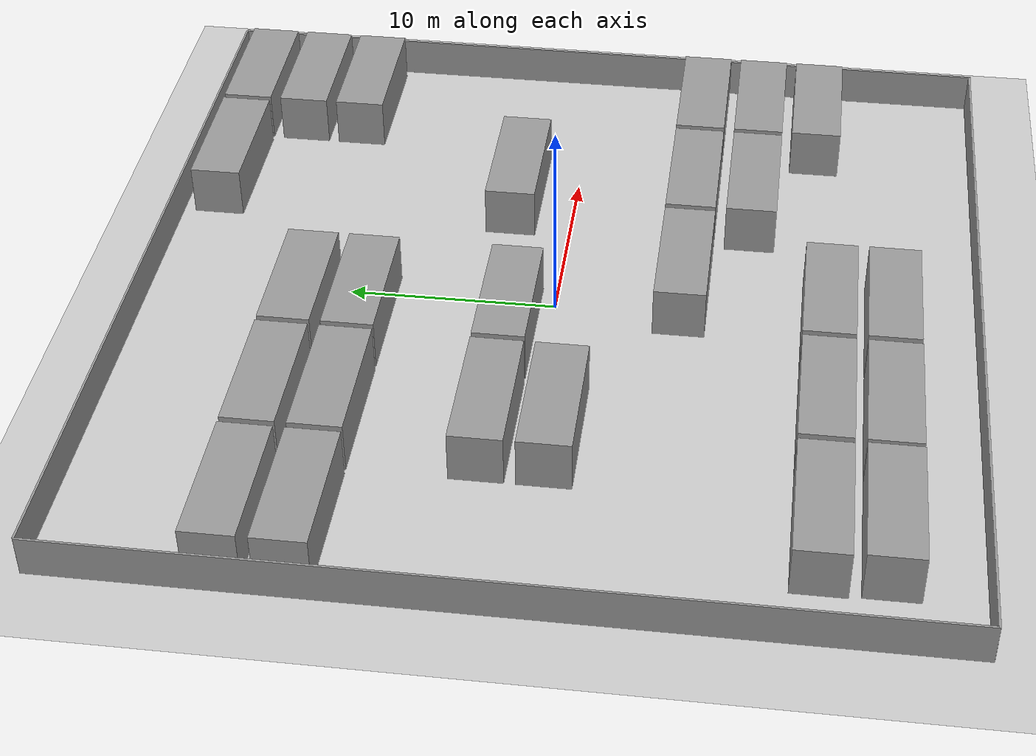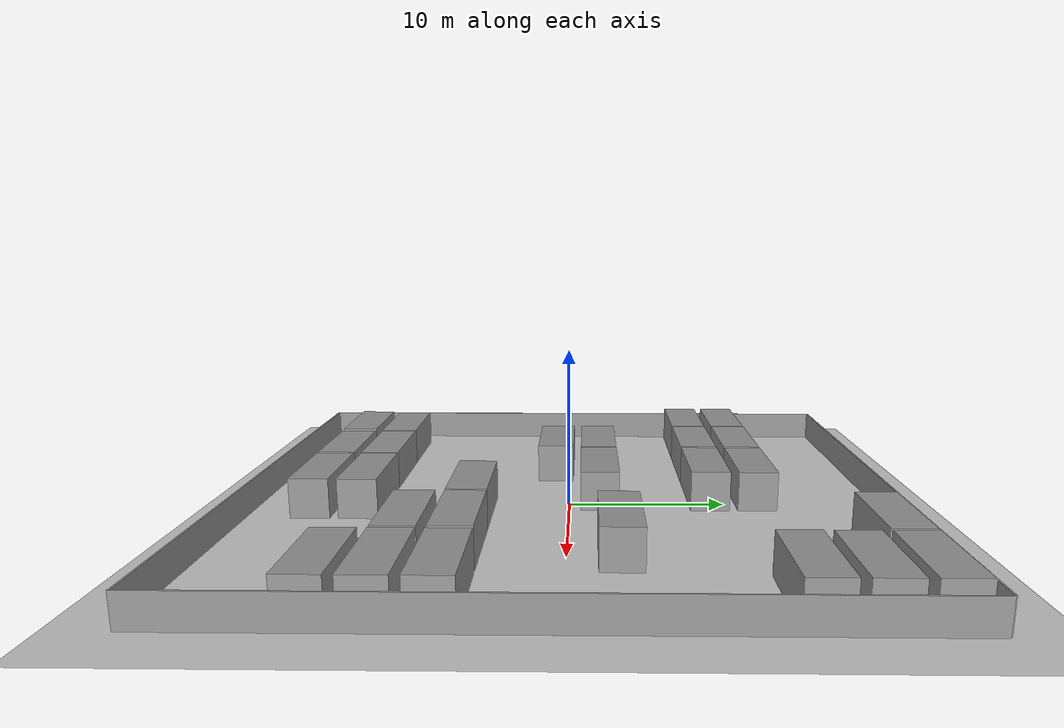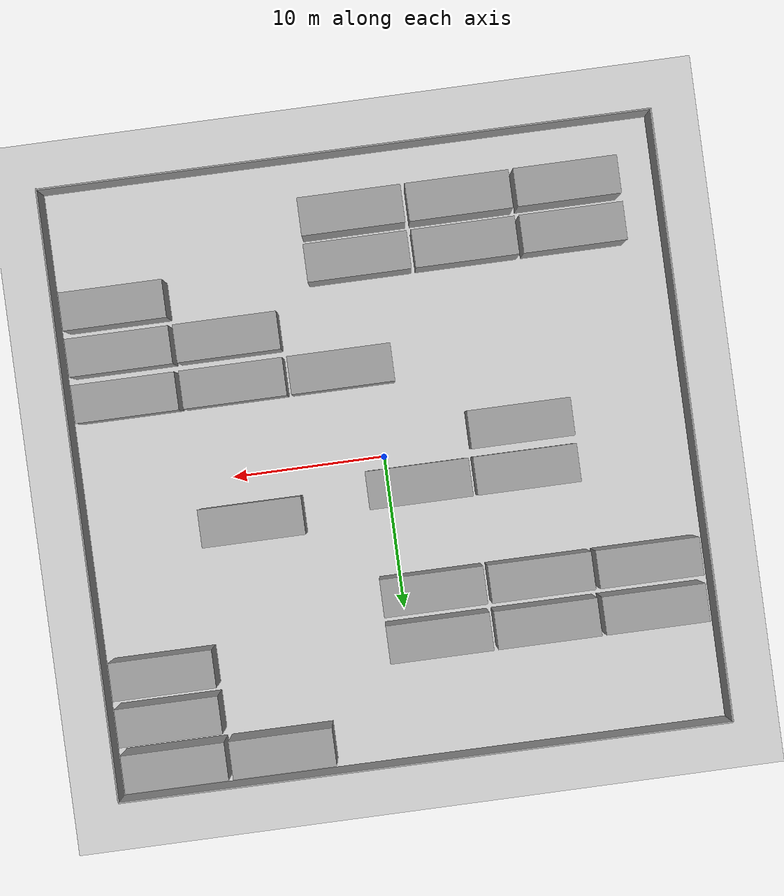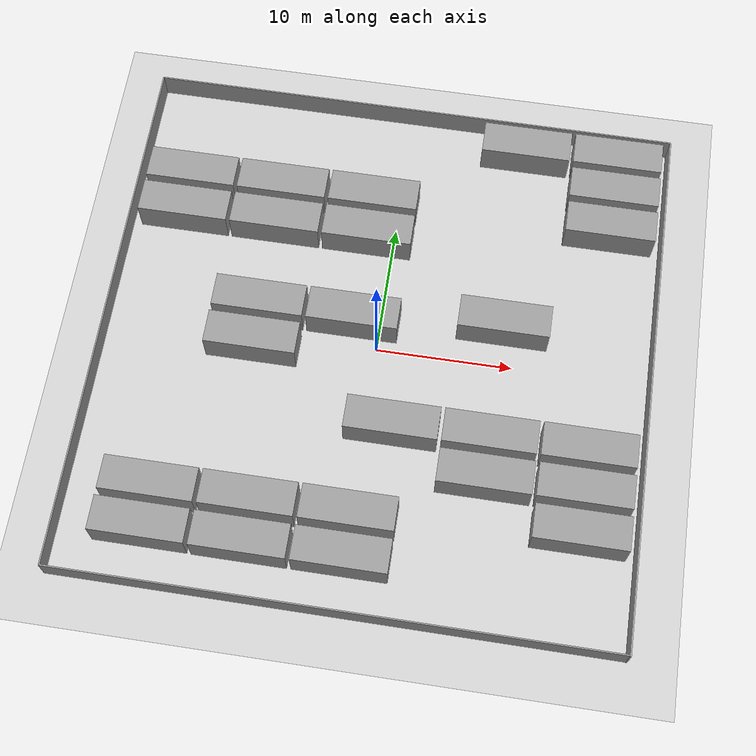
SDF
<sdf version="1.4">
 <world name="default">
  <light name="sun" type="directional">
   <cast_shadows>0</cast_shadows>
   <pose>0 0 10 0 -0 0</pose>
   <diffuse>0.8 0.8 0.8 1</diffuse>
   <specular>0.2 0.2 0.2 1</specular>
   <attenuation>
    <range>1000</range>
    <constant>0.9</constant>
    <linear>0.01</linear>
    <quadratic>0.001</quadratic>
   </attenuation>
   <direction>-0.5 0.1 -0.9</direction>
  </light>
  <model name="ground_plane">
   <static>1</static>
   <link name="link">
    <collision name="collision">
     <geometry><plane><normal>0 0 1</normal><size>100 100</size></plane></geometry>
     <surface><friction><ode><mu>100</mu><mu2>50</mu2></ode></friction></surface>
    </collision>
    <visual name="visual">
     <cast_shadows>0</cast_shadows>
     <geometry><plane><normal>0 0 1</normal><size>40 40</size></plane></geometry>
     <material>
      <script><uri>file://media/materials/scripts/gazebo.material</uri><name>Gazebo/Grey</name></script>
     </material>
    </visual>
    <velocity_decay><linear>0</linear><angular>0</angular></velocity_decay>
   </link>
  </model>
  <physics type="ode">
   <max_step_size>0.001</max_step_size>
   <real_time_factor>1</real_time_factor>
   <real_time_update_rate>1000</real_time_update_rate>
   <gravity>0 0 -9.8</gravity>
  </physics>
  <scene><ambient>0.4 0.4 0.4 1</ambient><background>0.7 0.7 0.7 1</background><shadows>0</shadows></scene>
  <spherical_coordinates>
   <surface_model>EARTH_WGS84</surface_model>
   <latitude_deg>0</latitude_deg>
   <longitude_deg>0</longitude_deg>
   <elevation>0</elevation>
   <heading_deg>0</heading_deg>
  </spherical_coordinates>
  <model name="wall_1">
   <pose>19.9725 -0.189071 0.990987 0 -0 0</pose>
   <link name="link">
    <inertial>
     <mass>1</mass>
     <inertia><ixx>1</ixx><ixy>0</ixy><ixz>0</ixz><iyy>1</iyy><iyz>0</iyz><izz>1</izz></inertia>
    </inertial>
    <collision name="collision"><geometry><box><size>0.1 40 2</size></box></geometry></collision>
    <visual name="visual">
     <geometry><box><size>0.1 40 2</size></box></geometry>
     <material>
      <script><uri>file://media/materials/scripts/gazebo.material</uri><name>Gazebo/Grey</name></script>
     </material>
    </visual>
    <velocity_decay><linear>0</linear><angular>0</angular></velocity_decay>
   </link>
   <static>1</static>
  </model>
  <model name="wall_3">
   <pose>-20.0486 -0.037272 0.990987 0 -0 0</pose>
   <link name="link">
    <inertial>
     <mass>1</mass>
     <inertia><ixx>1</ixx><ixy>0</ixy><ixz>0</ixz><iyy>1</iyy><iyz>0</iyz><izz>1</izz></inertia>
    </inertial>
    <collision name="collision"><geometry><box><size>0.1 40 2</size></box></geometry></collision>
    <visual name="visual">
     <geometry><box><size>0.1 40 2</size></box></geometry>
     <material>
      <script><uri>file://media/materials/scripts/gazebo.material</uri><name>Gazebo/Grey</name></script>
     </material>
    </visual>
    <velocity_decay><linear>0</linear><angular>0</angular></velocity_decay>
   </link>
   <static>1</static>
  </model>
  <model name="wall_2">
   <pose>-0.076077 -20.0521 0.998964 0 0 -1.57334</pose>
   <link name="link">
    <inertial>
     <mass>1</mass>
     <inertia><ixx>1</ixx><ixy>0</ixy><ixz>0</ixz><iyy>1</iyy><iyz>0</iyz><izz>1</izz></inertia>
    </inertial>
    <collision name="collision"><geometry><box><size>0.1 40 2</size></box></geometry></collision>
    <visual name="visual">
     <geometry><box><size>0.1 40 2</size></box></geometry>
     <material>
      <script><uri>file://media/materials/scripts/gazebo.material</uri><name>Gazebo/Grey</name></script>
     </material>
    </visual>
    <velocity_decay><linear>0</linear><angular>0</angular></velocity_decay>
   </link>
   <static>1</static>
  </model>
  <model name="wall_4">
   <pose>-0.035928 19.895 0.998964 0 0 -1.57334</pose>
   <link name="link">
    <inertial>
     <mass>1</mass>
     <inertia><ixx>1</ixx><ixy>0</ixy><ixz>0</ixz><iyy>1</iyy><iyz>0</iyz><izz>1</izz></inertia>
    </inertial>
    <collision name="collision"><geometry><box><size>0.1 40 2</size></box></geometry></collision>
    <visual name="visual">
     <geometry><box><size>0.1 40 2</size></box></geometry>
     <material>
      <script><uri>file://media/materials/scripts/gazebo.material</uri><name>Gazebo/Grey</name></script>
     </material>
    </visual>
    <velocity_decay><linear>0</linear><angular>0</angular></velocity_decay>
   </link>
   <static>1</static>
  </model>
  <model name="container_2">
   <pose>-2 12 1.26801 0 -0 1.57</pose>
   <link name="link">
    <inertial>
     <mass>1</mass>
     <inertia><ixx>1</ixx><ixy>0</ixy><ixz>0</ixz><iyy>1</iyy><iyz>0</iyz><izz>1</izz></inertia>
    </inertial>
    <collision name="collision"><geometry><box><size>2.47651 6.71503 2.53601</size></box></geometry></collision>
    <visual name="visual">
     <geometry><box><size>2.47651 6.71503 2.53601</size></box></geometry>
     <material>
      <script><uri>file://media/materials/scripts/gazebo.material</uri><name>Gazebo/Grey</name></script>
     </material>
    </visual>
    <velocity_decay><linear>0</linear><angular>0</angular></velocity_decay>
    <gravity>0</gravity>
   </link>
   <static>1</static>
  </model>
  <model name="container_3">
   <pose>-14 -16 1.35468 0 0 -1.57154</pose>
   <link name="link">
    <inertial>
     <mass>1</mass>
     <inertia><ixx>1</ixx><ixy>0</ixy><ixz>0</ixz><iyy>1</iyy><iyz>0</iyz><izz>1</izz></inertia>
    </inertial>
    <collision name="collision"><geometry><box><size>2.47651 6.71503 2.53601</size></box></geometry></collision>
    <visual name="visual">
     <geometry><box><size>2.47651 6.71503 2.53601</size></box></geometry>
     <material>
      <script><uri>file://media/materials/scripts/gazebo.material</uri><name>Gazebo/Grey</name></script>
     </material>
    </visual>
    <velocity_decay><linear>0</linear><angular>0</angular></velocity_decay>
    <gravity>0</gravity>
   </link>
   <static>1</static>
  </model>
  <model name="container_4">
   <pose>-9 12 1.26801 0 -0 1.57</pose>
   <link name="link">
    <inertial>
     <mass>1</mass>
     <inertia><ixx>1</ixx><ixy>0</ixy><ixz>0</ixz><iyy>1</iyy><iyz>0</iyz><izz>1</izz></inertia>
    </inertial>
    <collision name="collision"><geometry><box><size>2.47651 6.71503 2.53601</size></box></geometry></collision>
    <visual name="visual">
     <geometry><box><size>2.47651 6.71503 2.53601</size></box></geometry>
     <material>
      <script><uri>file://media/materials/scripts/gazebo.material</uri><name>Gazebo/Grey</name></script>
     </material>
    </visual>
    <velocity_decay><linear>0</linear><angular>0</angular></velocity_decay>
    <gravity>0</gravity>
   </link>
   <static>1</static>
  </model>
  <model name="container_6">
   <pose>-9 9 1.26801 0 -0 1.57</pose>
   <link name="link">
    <inertial>
     <mass>1</mass>
     <inertia><ixx>1</ixx><ixy>0</ixy><ixz>0</ixz><iyy>1</iyy><iyz>0</iyz><izz>1</izz></inertia>
    </inertial>
    <collision name="collision"><geometry><box><size>2.47651 6.71503 2.53601</size></box></geometry></collision>
    <visual name="visual">
     <geometry><box><size>2.47651 6.71503 2.53601</size></box></geometry>
     <material>
      <script><uri>file://media/materials/scripts/gazebo.material</uri><name>Gazebo/Grey</name></script>
     </material>
    </visual>
    <velocity_decay><linear>0</linear><angular>0</angular></velocity_decay>
    <gravity>0</gravity>
   </link>
   <static>1</static>
  </model>
  <model name="container_8">
   <pose>-2 9 1.26801 0 -0 1.57</pose>
   <link name="link">
    <inertial>
     <mass>1</mass>
     <inertia><ixx>1</ixx><ixy>0</ixy><ixz>0</ixz><iyy>1</iyy><iyz>0</iyz><izz>1</izz></inertia>
    </inertial>
    <collision name="collision"><geometry><box><size>2.47651 6.71503 2.53601</size></box></geometry></collision>
    <visual name="visual">
     <geometry><box><size>2.47651 6.71503 2.53601</size></box></geometry>
     <material>
      <script><uri>file://media/materials/scripts/gazebo.material</uri><name>Gazebo/Grey</name></script>
     </material>
    </visual>
    <velocity_decay><linear>0</linear><angular>0</angular></velocity_decay>
    <gravity>0</gravity>
   </link>
   <static>1</static>
  </model>
  <model name="container_25">
   <pose>-16 9 1.26801 0 -0 1.57</pose>
   <link name="link">
    <inertial>
     <mass>1</mass>
     <inertia><ixx>1</ixx><ixy>0</ixy><ixz>0</ixz><iyy>1</iyy><iyz>0</iyz><izz>1</izz></inertia>
    </inertial>
    <collision name="collision"><geometry><box><size>2.47651 6.71503 2.53601</size></box></geometry></collision>
    <visual name="visual">
     <geometry><box><size>2.47651 6.71503 2.53601</size></box></geometry>
     <material>
      <script><uri>file://media/materials/scripts/gazebo.material</uri><name>Gazebo/Grey</name></script>
     </material>
    </visual>
    <velocity_decay><linear>0</linear><angular>0</angular></velocity_decay>
    <gravity>0</gravity>
   </link>
   <static>1</static>
  </model>
  <model name="container_34">
   <pose>16 -9 1.26801 0 -0 1.57</pose>
   <link name="link">
    <inertial>
     <mass>1</mass>
     <inertia><ixx>1</ixx><ixy>0</ixy><ixz>0</ixz><iyy>1</iyy><iyz>0</iyz><izz>1</izz></inertia>
    </inertial>
    <collision name="collision"><geometry><box><size>2.47651 6.71503 2.53601</size></box></geometry></collision>
    <visual name="visual">
     <geometry><box><size>2.47651 6.71503 2.53601</size></box></geometry>
     <material>
      <script><uri>file://media/materials/scripts/gazebo.material</uri><name>Gazebo/Grey</name></script>
     </material>
    </visual>
    <velocity_decay><linear>0</linear><angular>0</angular></velocity_decay>
    <gravity>0</gravity>
   </link>
   <static>1</static>
  </model>
  <model name="container_32">
   <pose>16 -6 1.26801 0 -0 1.57</pose>
   <link name="link">
    <inertial>
     <mass>1</mass>
     <inertia><ixx>1</ixx><ixy>0</ixy><ixz>0</ixz><iyy>1</iyy><iyz>0</iyz><izz>1</izz></inertia>
    </inertial>
    <collision name="collision"><geometry><box><size>2.47651 6.71503 2.53601</size></box></geometry></collision>
    <visual name="visual">
     <geometry><box><size>2.47651 6.71503 2.53601</size></box></geometry>
     <material>
      <script><uri>file://media/materials/scripts/gazebo.material</uri><name>Gazebo/Grey</name></script>
     </material>
    </visual>
    <velocity_decay><linear>0</linear><angular>0</angular></velocity_decay>
    <gravity>0</gravity>
   </link>
   <static>1</static>
  </model>
  <model name="container_30">
   <pose>16 12 1.26801 0 -0 1.57</pose>
   <link name="link">
    <inertial>
     <mass>1</mass>
     <inertia><ixx>1</ixx><ixy>0</ixy><ixz>0</ixz><iyy>1</iyy><iyz>0</iyz><izz>1</izz></inertia>
    </inertial>
    <collision name="collision"><geometry><box><size>2.47651 6.71503 2.53601</size></box></geometry></collision>
    <visual name="visual">
     <geometry><box><size>2.47651 6.71503 2.53601</size></box></geometry>
     <material>
      <script><uri>file://media/materials/scripts/gazebo.material</uri><name>Gazebo/Grey</name></script>
     </material>
    </visual>
    <velocity_decay><linear>0</linear><angular>0</angular></velocity_decay>
    <gravity>0</gravity>
   </link>
   <static>1</static>
  </model>
  <model name="container_23">
   <pose>-16 12 1.26801 0 -0 1.57</pose>
   <link name="link">
    <inertial>
     <mass>1</mass>
     <inertia><ixx>1</ixx><ixy>0</ixy><ixz>0</ixz><iyy>1</iyy><iyz>0</iyz><izz>1</izz></inertia>
    </inertial>
    <collision name="collision"><geometry><box><size>2.47651 6.71503 2.53601</size></box></geometry></collision>
    <visual name="visual">
     <geometry><box><size>2.47651 6.71503 2.53601</size></box></geometry>
     <material>
      <script><uri>file://media/materials/scripts/gazebo.material</uri><name>Gazebo/Grey</name></script>
     </material>
    </visual>
    <velocity_decay><linear>0</linear><angular>0</angular></velocity_decay>
    <gravity>0</gravity>
   </link>
   <static>1</static>
  </model>
  <model name="container_21">
   <pose>-7 -16 1.26801 0 -0 1.57</pose>
   <link name="link">
    <inertial>
     <mass>1</mass>
     <inertia><ixx>1</ixx><ixy>0</ixy><ixz>0</ixz><iyy>1</iyy><iyz>0</iyz><izz>1</izz></inertia>
    </inertial>
    <collision name="collision"><geometry><box><size>2.47651 6.71503 2.53601</size></box></geometry></collision>
    <visual name="visual">
     <geometry><box><size>2.47651 6.71503 2.53601</size></box></geometry>
     <material>
      <script><uri>file://media/materials/scripts/gazebo.material</uri><name>Gazebo/Grey</name></script>
     </material>
    </visual>
    <velocity_decay><linear>0</linear><angular>0</angular></velocity_decay>
    <gravity>0</gravity>
   </link>
   <static>1</static>
  </model>
  <model name="container_10">
   <pose>2 -6 1.26801 0 -0 1.57</pose>
   <link name="link">
    <inertial>
     <mass>1</mass>
     <inertia><ixx>1</ixx><ixy>0</ixy><ixz>0</ixz><iyy>1</iyy><iyz>0</iyz><izz>1</izz></inertia>
    </inertial>
    <collision name="collision"><geometry><box><size>2.47651 6.71503 2.53601</size></box></geometry></collision>
    <visual name="visual">
     <geometry><box><size>2.47651 6.71503 2.53601</size></box></geometry>
     <material>
      <script><uri>file://media/materials/scripts/gazebo.material</uri><name>Gazebo/Grey</name></script>
     </material>
    </visual>
    <velocity_decay><linear>0</linear><angular>0</angular></velocity_decay>
    <gravity>0</gravity>
   </link>
   <static>1</static>
  </model>
  <model name="container_12">
   <pose>-7 -13 1.26801 0 -0 1.57</pose>
   <link name="link">
    <inertial>
     <mass>1</mass>
     <inertia><ixx>1</ixx><ixy>0</ixy><ixz>0</ixz><iyy>1</iyy><iyz>0</iyz><izz>1</izz></inertia>
    </inertial>
    <collision name="collision"><geometry><box><size>2.47651 6.71503 2.53601</size></box></geometry></collision>
    <visual name="visual">
     <geometry><box><size>2.47651 6.71503 2.53601</size></box></geometry>
     <material>
      <script><uri>file://media/materials/scripts/gazebo.material</uri><name>Gazebo/Grey</name></script>
     </material>
    </visual>
    <velocity_decay><linear>0</linear><angular>0</angular></velocity_decay>
    <gravity>0</gravity>
   </link>
   <static>1</static>
  </model>
  <model name="container_14">
   <pose>-14 -13 1.26801 0 -0 1.57</pose>
   <link name="link">
    <inertial>
     <mass>1</mass>
     <inertia><ixx>1</ixx><ixy>0</ixy><ixz>0</ixz><iyy>1</iyy><iyz>0</iyz><izz>1</izz></inertia>
    </inertial>
    <collision name="collision"><geometry><box><size>2.47651 6.71503 2.53601</size></box></geometry></collision>
    <visual name="visual">
     <geometry><box><size>2.47651 6.71503 2.53601</size></box></geometry>
     <material>
      <script><uri>file://media/materials/scripts/gazebo.material</uri><name>Gazebo/Grey</name></script>
     </material>
    </visual>
    <velocity_decay><linear>0</linear><angular>0</angular></velocity_decay>
    <gravity>0</gravity>
   </link>
   <static>1</static>
  </model>
  <model name="container_16">
   <pose>9 -6 1.26801 0 -0 1.57</pose>
   <link name="link">
    <inertial>
     <mass>1</mass>
     <inertia><ixx>1</ixx><ixy>0</ixy><ixz>0</ixz><iyy>1</iyy><iyz>0</iyz><izz>1</izz></inertia>
    </inertial>
    <collision name="collision"><geometry><box><size>2.47651 6.71503 2.53601</size></box></geometry></collision>
    <visual name="visual">
     <geometry><box><size>2.47651 6.71503 2.53601</size></box></geometry>
     <material>
      <script><uri>file://media/materials/scripts/gazebo.material</uri><name>Gazebo/Grey</name></script>
     </material>
    </visual>
    <velocity_decay><linear>0</linear><angular>0</angular></velocity_decay>
    <gravity>0</gravity>
   </link>
   <static>1</static>
  </model>
  <model name="container_18">
   <pose>0 -13 1.26801 0 -0 1.57</pose>
   <link name="link">
    <inertial>
     <mass>1</mass>
     <inertia><ixx>1</ixx><ixy>0</ixy><ixz>0</ixz><iyy>1</iyy><iyz>0</iyz><izz>1</izz></inertia>
    </inertial>
    <collision name="collision"><geometry><box><size>2.47651 6.71503 2.53601</size></box></geometry></collision>
    <visual name="visual">
     <geometry><box><size>2.47651 6.71503 2.53601</size></box></geometry>
     <material>
      <script><uri>file://media/materials/scripts/gazebo.material</uri><name>Gazebo/Grey</name></script>
     </material>
    </visual>
    <velocity_decay><linear>0</linear><angular>0</angular></velocity_decay>
    <gravity>0</gravity>
   </link>
   <static>1</static>
  </model>
  <model name="container_09">
   <pose>16 18 1.26801 0 -0 1.57</pose>
   <link name="link">
    <inertial>
     <mass>1</mass>
     <inertia><ixx>1</ixx><ixy>0</ixy><ixz>0</ixz><iyy>1</iyy><iyz>0</iyz><izz>1</izz></inertia>
    </inertial>
    <collision name="collision"><geometry><box><size>2.47651 6.71503 2.53601</size></box></geometry></collision>
    <visual name="visual">
     <geometry><box><size>2.47651 6.71503 2.53601</size></box></geometry>
     <material>
      <script><uri>file://media/materials/scripts/gazebo.material</uri><name>Gazebo/Grey</name></script>
     </material>
    </visual>
    <velocity_decay><linear>0</linear><angular>0</angular></velocity_decay>
    <gravity>0</gravity>
   </link>
   <static>1</static>
  </model>
  <model name="container_08">
   <pose>16 15 1.26801 0 -0 1.57</pose>
   <link name="link">
    <inertial>
     <mass>1</mass>
     <inertia><ixx>1</ixx><ixy>0</ixy><ixz>0</ixz><iyy>1</iyy><iyz>0</iyz><izz>1</izz></inertia>
    </inertial>
    <collision name="collision"><geometry><box><size>2.47651 6.71503 2.53601</size></box></geometry></collision>
    <visual name="visual">
     <geometry><box><size>2.47651 6.71503 2.53601</size></box></geometry>
     <material>
      <script><uri>file://media/materials/scripts/gazebo.material</uri><name>Gazebo/Grey</name></script>
     </material>
    </visual>
    <velocity_decay><linear>0</linear><angular>0</angular></velocity_decay>
    <gravity>0</gravity>
   </link>
   <static>1</static>
  </model>
  <model name="container_07">
   <pose>9 18 1.26801 0 -0 1.57</pose>
   <link name="link">
    <inertial>
     <mass>1</mass>
     <inertia><ixx>1</ixx><ixy>0</ixy><ixz>0</ixz><iyy>1</iyy><iyz>0</iyz><izz>1</izz></inertia>
    </inertial>
    <collision name="collision"><geometry><box><size>2.47651 6.71503 2.53601</size></box></geometry></collision>
    <visual name="visual">
     <geometry><box><size>2.47651 6.71503 2.53601</size></box></geometry>
     <material>
      <script><uri>file://media/materials/scripts/gazebo.material</uri><name>Gazebo/Grey</name></script>
     </material>
    </visual>
    <velocity_decay><linear>0</linear><angular>0</angular></velocity_decay>
    <gravity>0</gravity>
   </link>
   <static>1</static>
  </model>
  <model name="container_06">
   <pose>9 3 1.26801 0 -0 1.57</pose>
   <link name="link">
    <inertial>
     <mass>1</mass>
     <inertia><ixx>1</ixx><ixy>0</ixy><ixz>0</ixz><iyy>1</iyy><iyz>0</iyz><izz>1</izz></inertia>
    </inertial>
    <collision name="collision"><geometry><box><size>2.47651 6.71503 2.53601</size></box></geometry></collision>
    <visual name="visual">
     <geometry><box><size>2.47651 6.71503 2.53601</size></box></geometry>
     <material>
      <script><uri>file://media/materials/scripts/gazebo.material</uri><name>Gazebo/Grey</name></script>
     </material>
    </visual>
    <velocity_decay><linear>0</linear><angular>0</angular></velocity_decay>
    <gravity>0</gravity>
   </link>
   <static>1</static>
  </model>
  <model name="container_05">
   <pose>9 -9 1.26801 0 -0 1.57</pose>
   <link name="link">
    <inertial>
     <mass>1</mass>
     <inertia><ixx>1</ixx><ixy>0</ixy><ixz>0</ixz><iyy>1</iyy><iyz>0</iyz><izz>1</izz></inertia>
    </inertial>
    <collision name="collision"><geometry><box><size>2.47651 6.71503 2.53601</size></box></geometry></collision>
    <visual name="visual">
     <geometry><box><size>2.47651 6.71503 2.53601</size></box></geometry>
     <material>
      <script><uri>file://media/materials/scripts/gazebo.material</uri><name>Gazebo/Grey</name></script>
     </material>
    </visual>
    <velocity_decay><linear>0</linear><angular>0</angular></velocity_decay>
    <gravity>0</gravity>
   </link>
   <static>1</static>
  </model>
  <model name="container_05">
   <pose>9 -9 1.26801 0 -0 1.57</pose>
   <link name="link">
    <inertial>
     <mass>1</mass>
     <inertia><ixx>1</ixx><ixy>0</ixy><ixz>0</ixz><iyy>1</iyy><iyz>0</iyz><izz>1</izz></inertia>
    </inertial>
    <collision name="collision"><geometry><box><size>2.47651 6.71503 2.53601</size></box></geometry></collision>
    <visual name="visual">
     <geometry><box><size>2.47651 6.71503 2.53601</size></box></geometry>
     <material>
      <script><uri>file://media/materials/scripts/gazebo.material</uri><name>Gazebo/Grey</name></script>
     </material>
    </visual>
    <velocity_decay><linear>0</linear><angular>0</angular></velocity_decay>
    <gravity>0</gravity>
   </link>
   <static>1</static>
  </model>
  <model name="container_04">
   <pose>-9 -1 1.26801 0 -0 1.57</pose>
   <link name="link">
    <inertial>
     <mass>1</mass>
     <inertia><ixx>1</ixx><ixy>0</ixy><ixz>0</ixz><iyy>1</iyy><iyz>0</iyz><izz>1</izz></inertia>
    </inertial>
    <collision name="collision"><geometry><box><size>2.47651 6.71503 2.53601</size></box></geometry></collision>
    <visual name="visual">
     <geometry><box><size>2.47651 6.71503 2.53601</size></box></geometry>
     <material>
      <script><uri>file://media/materials/scripts/gazebo.material</uri><name>Gazebo/Grey</name></script>
     </material>
    </visual>
    <velocity_decay><linear>0</linear><angular>0</angular></velocity_decay>
    <gravity>0</gravity>
   </link>
   <static>1</static>
  </model>
  <model name="container_03">
   <pose>-9 2 1.26801 0 -0 1.57</pose>
   <link name="link">
    <inertial>
     <mass>1</mass>
     <inertia><ixx>1</ixx><ixy>0</ixy><ixz>0</ixz><iyy>1</iyy><iyz>0</iyz><izz>1</izz></inertia>
    </inertial>
    <collision name="collision"><geometry><box><size>2.47651 6.71503 2.53601</size></box></geometry></collision>
    <visual name="visual">
     <geometry><box><size>2.47651 6.71503 2.53601</size></box></geometry>
     <material>
      <script><uri>file://media/materials/scripts/gazebo.material</uri><name>Gazebo/Grey</name></script>
     </material>
    </visual>
    <velocity_decay><linear>0</linear><angular>0</angular></velocity_decay>
    <gravity>0</gravity>
   </link>
   <static>1</static>
  </model>
  <model name="container_02">
   <pose>-2 2 1.26801 0 -0 1.57</pose>
   <link name="link">
    <inertial>
     <mass>1</mass>
     <inertia><ixx>1</ixx><ixy>0</ixy><ixz>0</ixz><iyy>1</iyy><iyz>0</iyz><izz>1</izz></inertia>
    </inertial>
    <collision name="collision"><geometry><box><size>2.47651 6.71503 2.53601</size></box></geometry></collision>
    <visual name="visual">
     <geometry><box><size>2.47651 6.71503 2.53601</size></box></geometry>
     <material>
      <script><uri>file://media/materials/scripts/gazebo.material</uri><name>Gazebo/Grey</name></script>
     </material>
    </visual>
    <velocity_decay><linear>0</linear><angular>0</angular></velocity_decay>
    <gravity>0</gravity>
   </link>
   <static>1</static>
  </model>
  <model name="container_01">
   <pose>16 -12 1.26801 0 -0 1.57</pose>
   <link name="link">
    <inertial>
     <mass>1</mass>
     <inertia><ixx>1</ixx><ixy>0</ixy><ixz>0</ixz><iyy>1</iyy><iyz>0</iyz><izz>1</izz></inertia>
    </inertial>
    <collision name="collision"><geometry><box><size>2.47651 6.71503 2.53601</size></box></geometry></collision>
    <visual name="visual">
     <geometry><box><size>2.47651 6.71503 2.53601</size></box></geometry>
     <material>
      <script><uri>file://media/materials/scripts/gazebo.material</uri><name>Gazebo/Grey</name></script>
     </material>
    </visual>
    <velocity_decay><linear>0</linear><angular>0</angular></velocity_decay>
    <gravity>0</gravity>
   </link>
   <static>1</static>
  </model>
  <model name="container_20">
   <pose>0 -16 1.26801 0 -0 1.57</pose>
   <link name="link">
    <inertial>
     <mass>1</mass>
     <inertia><ixx>1</ixx><ixy>0</ixy><ixz>0</ixz><iyy>1</iyy><iyz>0</iyz><izz>1</izz></inertia>
    </inertial>
    <collision name="collision"><geometry><box><size>2.47651 6.71503 2.53601</size></box></geometry></collision>
    <visual name="visual">
     <geometry><box><size>2.47651 6.71503 2.53601</size></box></geometry>
     <material>
      <script><uri>file://media/materials/scripts/gazebo.material</uri><name>Gazebo/Grey</name></script>
     </material>
    </visual>
    <velocity_decay><linear>0</linear><angular>0</angular></velocity_decay>
    <gravity>0</gravity>
   </link>
   <static>1</static>
  </model>
 </world>
</sdf>
